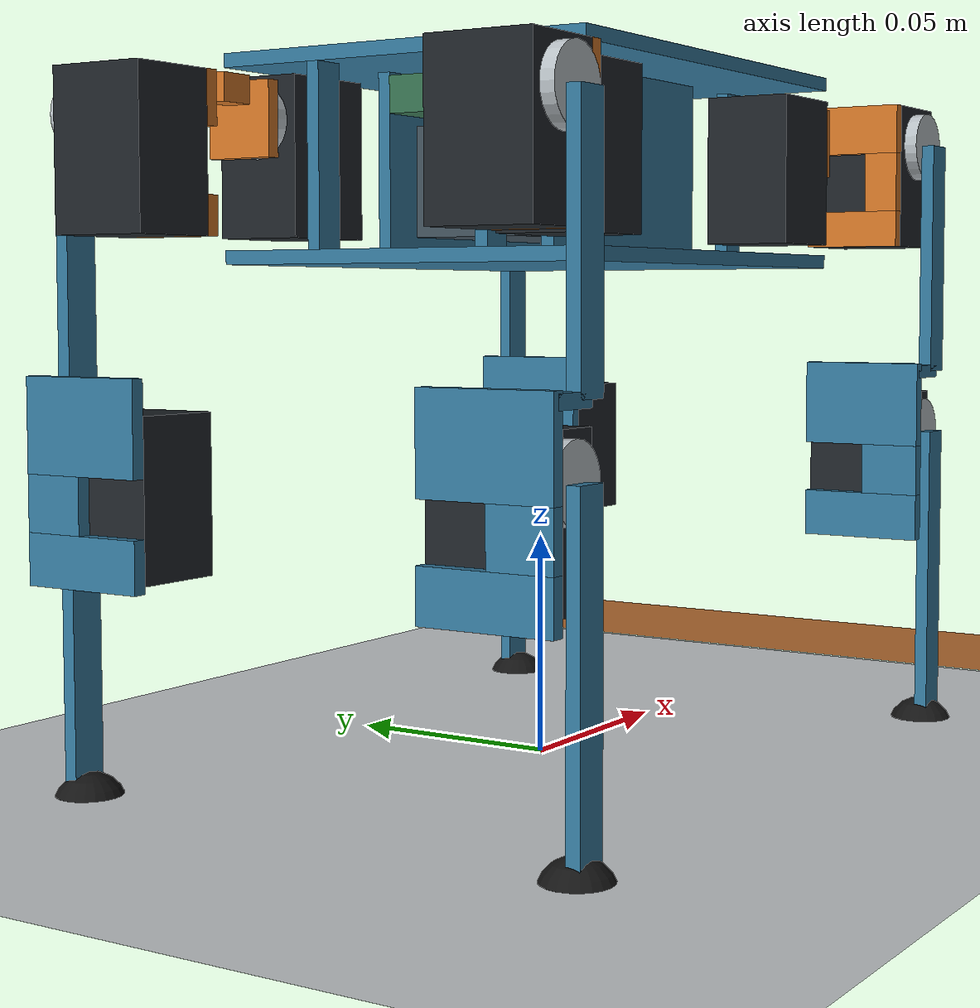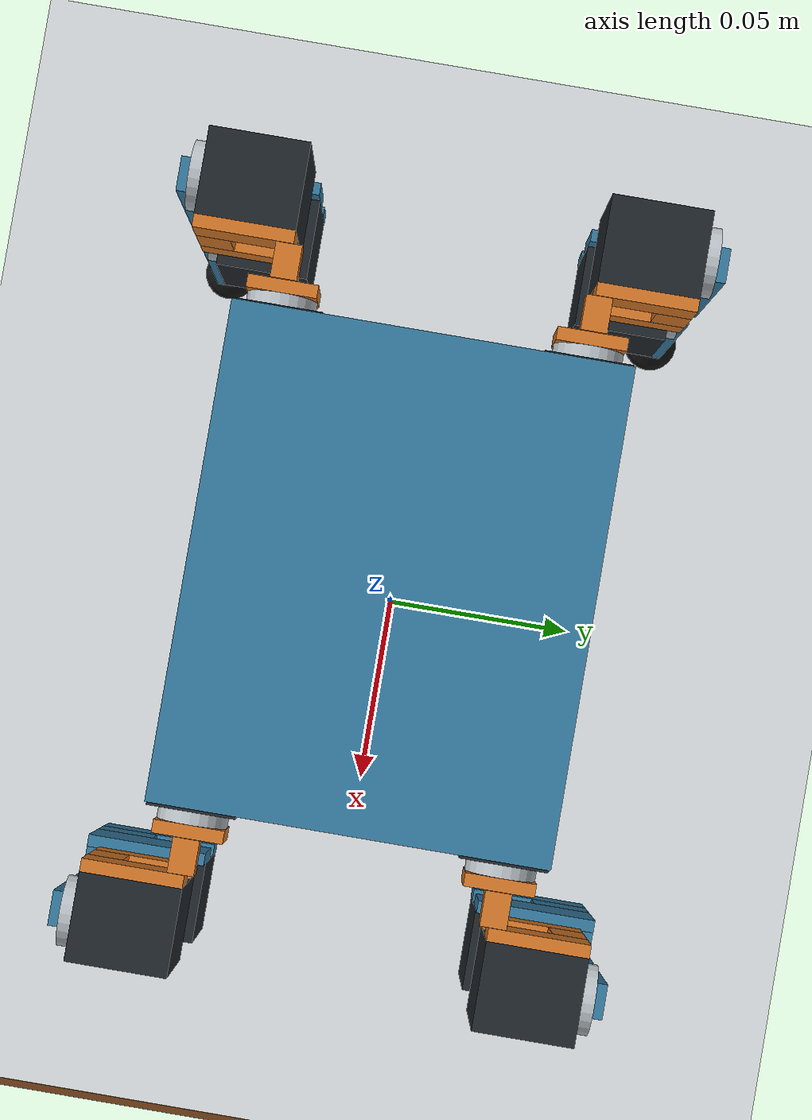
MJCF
<mujoco model="cheetah_pup_assembly_v1">
  <!-- Original shaft-anchored assembly envelopes. Ideal PD diagnostic XML; BAM adapter is separate. -->
  <compiler angle="radian" autolimits="true" inertiafromgeom="false" />
  <option timestep="0.002" integrator="implicitfast" gravity="0 0 -9.81" />
  <visual>
    <global azimuth="135" elevation="-25" />
    <headlight diffuse="0.8 0.8 0.8" ambient="0.3 0.3 0.3" />
  </visual>
  <default>
    <joint type="hinge" limited="true" damping="0.003" armature="8e-06" />
    <geom contype="1" conaffinity="3" condim="3" friction="0.8 0.005 0.0001" />
  </default>
  <worldbody>
    <geom name="ground" type="plane" size="2 2 0.1" contype="2" conaffinity="1" friction="0.8 0.005 0.0001" rgba="0.83 0.85 0.86 1" />
    <light pos="0 -0.4 1" dir="0 0 -1" directional="true" />
    <geom name="threshold" type="box" pos="0.55 0 0.005" size="0.04 0.4 0.005" contype="2" conaffinity="1" rgba="0.6 0.35 0.15 1" />
    <body name="base" pos="0 0 0.14155384413">
      <freejoint name="floating_base" />
      <geom name="chassis_top" type="box" pos="0.0 0.0 0.013499999999999998" rgba="0.20 0.47 0.61 1" group="0" size="0.056 0.045 0.0015" />
      <geom name="chassis_bottom" type="box" pos="0.0 0.0 -0.028499999999999998" rgba="0.20 0.47 0.61 1" group="0" size="0.056 0.045 0.0015" />
      <geom name="chassis_left_center_rail" type="box" pos="0.0 0.021 -0.0075" rgba="0.20 0.47 0.61 1" group="0" size="0.031 0.0015 0.0195" />
      <geom name="chassis_left_front_post" type="box" pos="0.0525 0.021 -0.0075" rgba="0.20 0.47 0.61 1" group="0" size="0.0035 0.0015 0.0195" />
      <geom name="chassis_left_rear_post" type="box" pos="-0.0525 0.021 -0.0075" rgba="0.20 0.47 0.61 1" group="0" size="0.0035 0.0015 0.0195" />
      <geom name="chassis_right_center_rail" type="box" pos="0.0 -0.021 -0.0075" rgba="0.20 0.47 0.61 1" group="0" size="0.031 0.0015 0.0195" />
      <geom name="chassis_right_front_post" type="box" pos="0.0525 -0.021 -0.0075" rgba="0.20 0.47 0.61 1" group="0" size="0.0035 0.0015 0.0195" />
      <geom name="chassis_right_rear_post" type="box" pos="-0.0525 -0.021 -0.0075" rgba="0.20 0.47 0.61 1" group="0" size="0.0035 0.0015 0.0195" />
      <geom name="battery_allowance" type="box" pos="0.0 0.0 -0.012" rgba="0.25 0.31 0.35 1" group="0" size="0.03 0.013 0.012" />
      <geom name="compute_allowance" type="box" pos="0.025 0.0 0.006" rgba="0.21 0.44 0.31 1" group="0" size="0.0225 0.013 0.004" />
      <geom name="electronics_allowance" type="box" pos="-0.025 0.0 0.006" rgba="0.21 0.44 0.31 1" group="0" size="0.015 0.013 0.004" />
      <geom name="FL_roll_motor_envelope" type="box" pos="0.0455 0.035 -0.0075" rgba="0.12 0.14 0.16 1" group="0" size="0.0115 0.01 0.017" />
      <geom name="FL_roll_port_keepout_a" type="box" pos="0.041499999999999995 0.020000000000000004 -0.009" rgba="0.65 0.35 0.73 0.25" group="5" size="0.0065 0.005 0.006" contype="0" conaffinity="0" />
      <geom name="FL_roll_port_keepout_b" type="box" pos="0.041499999999999995 0.05 -0.009" rgba="0.65 0.35 0.73 0.25" group="5" size="0.0065 0.005 0.006" contype="0" conaffinity="0" />
      <geom name="FR_roll_motor_envelope" type="box" pos="0.0455 -0.035 -0.0075" rgba="0.12 0.14 0.16 1" group="0" size="0.0115 0.01 0.017" />
      <geom name="FR_roll_port_keepout_a" type="box" pos="0.041499999999999995 -0.05 -0.009" rgba="0.65 0.35 0.73 0.25" group="5" size="0.0065 0.005 0.006" contype="0" conaffinity="0" />
      <geom name="FR_roll_port_keepout_b" type="box" pos="0.041499999999999995 -0.020000000000000004 -0.009" rgba="0.65 0.35 0.73 0.25" group="5" size="0.0065 0.005 0.006" contype="0" conaffinity="0" />
      <geom name="RL_roll_motor_envelope" type="box" pos="-0.0455 0.035 -0.0075" rgba="0.12 0.14 0.16 1" group="0" size="0.0115 0.01 0.017" />
      <geom name="RL_roll_port_keepout_a" type="box" pos="-0.041499999999999995 0.05 -0.009" rgba="0.65 0.35 0.73 0.25" group="5" size="0.0065 0.005 0.006" contype="0" conaffinity="0" />
      <geom name="RL_roll_port_keepout_b" type="box" pos="-0.041499999999999995 0.020000000000000004 -0.009" rgba="0.65 0.35 0.73 0.25" group="5" size="0.0065 0.005 0.006" contype="0" conaffinity="0" />
      <geom name="RR_roll_motor_envelope" type="box" pos="-0.0455 -0.035 -0.0075" rgba="0.12 0.14 0.16 1" group="0" size="0.0115 0.01 0.017" />
      <geom name="RR_roll_port_keepout_a" type="box" pos="-0.041499999999999995 -0.020000000000000004 -0.009" rgba="0.65 0.35 0.73 0.25" group="5" size="0.0065 0.005 0.006" contype="0" conaffinity="0" />
      <geom name="RR_roll_port_keepout_b" type="box" pos="-0.041499999999999995 -0.05 -0.009" rgba="0.65 0.35 0.73 0.25" group="5" size="0.0065 0.005 0.006" contype="0" conaffinity="0" />
      <inertial mass="0.353" pos="0.000354107648725 0 -0.00626149244873" fullinertia="0.000229030997878 0.00041502124359 0.000520686349457 9.37893941723e-07 -1.53268655609e-06 0" />
      <site name="imu" pos="0 0 0" size="0.003" rgba="1 0.4 0 1" />
      <camera name="follow" mode="trackcom" pos="0.38 -0.43 0.24" xyaxes="0.75 0.66 0 -0.26 0.30 0.92" />
      <body name="FL_roll_link" pos="0.06 0.035 0">
        <joint name="FL_hip_roll" axis="1 0 0" range="-0.7 0.7" />
        <geom name="FL_roll_horn_spacer" type="box" pos="0.0015 0.0 0.0" rgba="0.82 0.46 0.15 1" group="0" size="0.0015 0.008 0.008" />
        <geom name="FL_roll_bridge" type="box" pos="0.007 0.0 0.006" rgba="0.82 0.46 0.15 1" group="0" size="0.004 0.003 0.003" />
        <geom name="FL_roll_cheek_top" type="box" pos="0.0125 0.0105 0.00375" rgba="0.82 0.46 0.15 1" group="0" size="0.0015 0.0115 0.00575" />
        <geom name="FL_roll_cheek_bottom" type="box" pos="0.0125 0.0105 -0.02025" rgba="0.82 0.46 0.15 1" group="0" size="0.0015 0.0115 0.00425" />
        <geom name="FL_roll_cheek_front" type="box" pos="0.0125 0.018000000000000002 -0.009" rgba="0.82 0.46 0.15 1" group="0" size="0.0015 0.004 0.007" />
        <geom name="FL_hip_motor_envelope" type="box" pos="0.024 0.0105 -0.0075" rgba="0.12 0.14 0.16 1" group="0" size="0.01 0.0115 0.017" />
        <geom name="FL_roll_output_horn" type="cylinder" rgba="0.72 0.75 0.77 1" group="0" fromto="-0.003 0.0 0.0 0.0 0.0 0.0" size="0.008" />
        <geom name="FL_hip_port_keepout_a" type="box" pos="0.039 0.006500000000000002 -0.009" rgba="0.65 0.35 0.73 0.25" group="5" size="0.005 0.0065 0.006" contype="0" conaffinity="0" />
        <geom name="FL_hip_port_keepout_b" type="box" pos="0.009000000000000001 0.006500000000000002 -0.009" rgba="0.65 0.35 0.73 0.25" group="5" size="0.005 0.0065 0.006" contype="0" conaffinity="0" />
        <inertial mass="0.022" pos="0.0214891751484 0.0110656772562 -0.00822913610519" fullinertia="3.40822247721e-06 3.6626300734e-06 2.48517706661e-06 -3.21571276726e-07 3.67711512067e-07 -4.40612932327e-08" />
        <body name="FL_upper_link" pos="0.024 0.025 0">
          <joint name="FL_hip_pitch" axis="0 1 0" range="-1.2 1.2" />
          <geom name="FL_upper_bar" type="box" pos="0.0 0.0015 -0.027500000000000004" rgba="0.20 0.47 0.61 1" group="0" size="0.004 0.0015 0.027500000000000004" />
          <geom name="FL_upper_bridge" type="box" pos="-0.00575 0.0015 -0.05500000000000001" rgba="0.20 0.47 0.61 1" group="0" size="0.00575 0.0015 0.0015" />
          <geom name="FL_knee_cheek_top" type="box" pos="-0.0115 -0.0115 -0.063" rgba="0.20 0.47 0.61 1" group="0" size="0.0015 0.0145 0.01" />
          <geom name="FL_knee_cheek_bottom" type="box" pos="-0.0115 -0.0115 -0.09050000000000001" rgba="0.20 0.47 0.61 1" group="0" size="0.0015 0.0145 0.0055" />
          <geom name="FL_knee_cheek_front" type="box" pos="-0.0115 -0.004 -0.079" rgba="0.20 0.47 0.61 1" group="0" size="0.0015 0.007 0.006" />
          <geom name="FL_knee_motor_envelope" type="box" pos="0.0 -0.0145 -0.07750000000000001" rgba="0.12 0.14 0.16 1" group="0" size="0.01 0.0115 0.017" />
          <geom name="FL_hip_output_horn" type="cylinder" rgba="0.72 0.75 0.77 1" group="0" fromto="0.0 -0.003 0.0 0.0 0.0 0.0" size="0.008" />
          <geom name="FL_knee_port_keepout_a" type="box" pos="0.015 -0.0185 -0.079" rgba="0.65 0.35 0.73 0.25" group="5" size="0.005 0.0065 0.006" contype="0" conaffinity="0" />
          <geom name="FL_knee_port_keepout_b" type="box" pos="-0.015 -0.0185 -0.079" rgba="0.65 0.35 0.73 0.25" group="5" size="0.005 0.0065 0.006" contype="0" conaffinity="0" />
          <inertial mass="0.03" pos="-0.00306091589523 -0.0105454458159 -0.0715932667598" fullinertia="1.39216344542e-05 1.32602270516e-05 3.35884136866e-06 6.4792130985e-08 -1.19212742916e-07 -2.40170136229e-06" />
          <body name="FL_lower_link" pos="0 0 -0.07">
            <joint name="FL_knee" axis="0 1 0" range="-2.1 -0.1" />
            <geom name="FL_lower_bar" type="box" pos="0.0 0.0015 -0.0375" rgba="0.20 0.47 0.61 1" group="0" size="0.004 0.0015 0.0375" />
            <geom name="FL_knee_output_horn" type="cylinder" rgba="0.72 0.75 0.77 1" group="0" fromto="0.0 -0.003 0.0 0.0 0.0 0.0" size="0.008" />
            <inertial mass="0.013" pos="0 0.00115384615385 -0.0461538461538" fullinertia="8.02218461538e-06 8.06282564103e-06 1.42825641026e-07 0 0 -1.29807692308e-07" />
            <geom name="FL_foot_collision" type="sphere" pos="0 0 -0.075" size="0.008" rgba="0.08 0.08 0.08 1" />
            <site name="FL_foot" pos="0 0 -0.075" size="0.002" rgba="1 0.2 0.1 1" />
          </body>
        </body>
      </body>
      <body name="FR_roll_link" pos="0.06 -0.035 0">
        <joint name="FR_hip_roll" axis="1 0 0" range="-0.7 0.7" />
        <geom name="FR_roll_horn_spacer" type="box" pos="0.0015 0.0 0.0" rgba="0.82 0.46 0.15 1" group="0" size="0.0015 0.008 0.008" />
        <geom name="FR_roll_bridge" type="box" pos="0.007 0.0 0.006" rgba="0.82 0.46 0.15 1" group="0" size="0.004 0.003 0.003" />
        <geom name="FR_roll_cheek_top" type="box" pos="0.0125 -0.0105 0.00375" rgba="0.82 0.46 0.15 1" group="0" size="0.0015 0.0115 0.00575" />
        <geom name="FR_roll_cheek_bottom" type="box" pos="0.0125 -0.0105 -0.02025" rgba="0.82 0.46 0.15 1" group="0" size="0.0015 0.0115 0.00425" />
        <geom name="FR_roll_cheek_front" type="box" pos="0.0125 -0.018000000000000002 -0.009" rgba="0.82 0.46 0.15 1" group="0" size="0.0015 0.004 0.007" />
        <geom name="FR_hip_motor_envelope" type="box" pos="0.024 -0.0105 -0.0075" rgba="0.12 0.14 0.16 1" group="0" size="0.01 0.0115 0.017" />
        <geom name="FR_roll_output_horn" type="cylinder" rgba="0.72 0.75 0.77 1" group="0" fromto="-0.003 0.0 0.0 0.0 0.0 0.0" size="0.008" />
        <geom name="FR_hip_port_keepout_a" type="box" pos="0.009000000000000001 -0.006500000000000002 -0.009" rgba="0.65 0.35 0.73 0.25" group="5" size="0.005 0.0065 0.006" contype="0" conaffinity="0" />
        <geom name="FR_hip_port_keepout_b" type="box" pos="0.039 -0.006500000000000002 -0.009" rgba="0.65 0.35 0.73 0.25" group="5" size="0.005 0.0065 0.006" contype="0" conaffinity="0" />
        <inertial mass="0.022" pos="0.0210129893538 -0.0110656772562 -0.00822913610519" fullinertia="3.40822247721e-06 3.60503426777e-06 2.42758126098e-06 3.35212370626e-07 3.16622093037e-07 4.40612932327e-08" />
        <body name="FR_upper_link" pos="0.024 -0.025 0">
          <joint name="FR_hip_pitch" axis="0 1 0" range="-1.2 1.2" />
          <geom name="FR_upper_bar" type="box" pos="0.0 -0.0015 -0.027500000000000004" rgba="0.20 0.47 0.61 1" group="0" size="0.004 0.0015 0.027500000000000004" />
          <geom name="FR_upper_bridge" type="box" pos="-0.00575 -0.0015 -0.05500000000000001" rgba="0.20 0.47 0.61 1" group="0" size="0.00575 0.0015 0.0015" />
          <geom name="FR_knee_cheek_top" type="box" pos="-0.0115 0.0115 -0.063" rgba="0.20 0.47 0.61 1" group="0" size="0.0015 0.0145 0.01" />
          <geom name="FR_knee_cheek_bottom" type="box" pos="-0.0115 0.0115 -0.09050000000000001" rgba="0.20 0.47 0.61 1" group="0" size="0.0015 0.0145 0.0055" />
          <geom name="FR_knee_cheek_front" type="box" pos="-0.0115 0.004 -0.079" rgba="0.20 0.47 0.61 1" group="0" size="0.0015 0.007 0.006" />
          <geom name="FR_knee_motor_envelope" type="box" pos="0.0 0.0145 -0.07750000000000001" rgba="0.12 0.14 0.16 1" group="0" size="0.01 0.0115 0.017" />
          <geom name="FR_hip_output_horn" type="cylinder" rgba="0.72 0.75 0.77 1" group="0" fromto="0.0 0.003 0.0 0.0 0.0 0.0" size="0.008" />
          <geom name="FR_knee_port_keepout_a" type="box" pos="-0.015 0.0185 -0.079" rgba="0.65 0.35 0.73 0.25" group="5" size="0.005 0.0065 0.006" contype="0" conaffinity="0" />
          <geom name="FR_knee_port_keepout_b" type="box" pos="0.015 0.0185 -0.079" rgba="0.65 0.35 0.73 0.25" group="5" size="0.005 0.0065 0.006" contype="0" conaffinity="0" />
          <inertial mass="0.03" pos="-0.00341011881123 0.0105454458159 -0.0715932667598" fullinertia="1.39216344542e-05 1.31924359259e-05 3.29105024299e-06 -1.56488659294e-08 -2.39820109714e-07 2.40170136229e-06" />
          <body name="FR_lower_link" pos="0 0 -0.07">
            <joint name="FR_knee" axis="0 1 0" range="-2.1 -0.1" />
            <geom name="FR_lower_bar" type="box" pos="0.0 -0.0015 -0.0375" rgba="0.20 0.47 0.61 1" group="0" size="0.004 0.0015 0.0375" />
            <geom name="FR_knee_output_horn" type="cylinder" rgba="0.72 0.75 0.77 1" group="0" fromto="0.0 0.003 0.0 0.0 0.0 0.0" size="0.008" />
            <inertial mass="0.013" pos="0 -0.00115384615385 -0.0461538461538" fullinertia="8.02218461538e-06 8.06282564103e-06 1.42825641026e-07 0 0 1.29807692308e-07" />
            <geom name="FR_foot_collision" type="sphere" pos="0 0 -0.075" size="0.008" rgba="0.08 0.08 0.08 1" />
            <site name="FR_foot" pos="0 0 -0.075" size="0.002" rgba="1 0.2 0.1 1" />
          </body>
        </body>
      </body>
      <body name="RL_roll_link" pos="-0.06 0.035 0">
        <joint name="RL_hip_roll" axis="1 0 0" range="-0.7 0.7" />
        <geom name="RL_roll_horn_spacer" type="box" pos="-0.0015 0.0 0.0" rgba="0.82 0.46 0.15 1" group="0" size="0.0015 0.008 0.008" />
        <geom name="RL_roll_bridge" type="box" pos="-0.007 0.0 0.006" rgba="0.82 0.46 0.15 1" group="0" size="0.004 0.003 0.003" />
        <geom name="RL_roll_cheek_top" type="box" pos="-0.0125 0.0105 0.00375" rgba="0.82 0.46 0.15 1" group="0" size="0.0015 0.0115 0.00575" />
        <geom name="RL_roll_cheek_bottom" type="box" pos="-0.0125 0.0105 -0.02025" rgba="0.82 0.46 0.15 1" group="0" size="0.0015 0.0115 0.00425" />
        <geom name="RL_roll_cheek_front" type="box" pos="-0.0125 0.018000000000000002 -0.009" rgba="0.82 0.46 0.15 1" group="0" size="0.0015 0.004 0.007" />
        <geom name="RL_hip_motor_envelope" type="box" pos="-0.024 0.0105 -0.0075" rgba="0.12 0.14 0.16 1" group="0" size="0.01 0.0115 0.017" />
        <geom name="RL_roll_output_horn" type="cylinder" rgba="0.72 0.75 0.77 1" group="0" fromto="0.003 0.0 0.0 0.0 0.0 0.0" size="0.008" />
        <geom name="RL_hip_port_keepout_a" type="box" pos="-0.009000000000000001 0.006500000000000002 -0.009" rgba="0.65 0.35 0.73 0.25" group="5" size="0.005 0.0065 0.006" contype="0" conaffinity="0" />
        <geom name="RL_hip_port_keepout_b" type="box" pos="-0.039 0.006500000000000002 -0.009" rgba="0.65 0.35 0.73 0.25" group="5" size="0.005 0.0065 0.006" contype="0" conaffinity="0" />
        <inertial mass="0.022" pos="-0.0210129893538 0.0110656772562 -0.00822913610519" fullinertia="3.40822247721e-06 3.60503426777e-06 2.42758126098e-06 3.35212370626e-07 -3.16622093037e-07 -4.40612932327e-08" />
        <body name="RL_upper_link" pos="-0.024 0.025 0">
          <joint name="RL_hip_pitch" axis="0 1 0" range="-1.2 1.2" />
          <geom name="RL_upper_bar" type="box" pos="0.0 0.0015 -0.027500000000000004" rgba="0.20 0.47 0.61 1" group="0" size="0.004 0.0015 0.027500000000000004" />
          <geom name="RL_upper_bridge" type="box" pos="-0.00575 0.0015 -0.05500000000000001" rgba="0.20 0.47 0.61 1" group="0" size="0.00575 0.0015 0.0015" />
          <geom name="RL_knee_cheek_top" type="box" pos="-0.0115 -0.0115 -0.063" rgba="0.20 0.47 0.61 1" group="0" size="0.0015 0.0145 0.01" />
          <geom name="RL_knee_cheek_bottom" type="box" pos="-0.0115 -0.0115 -0.09050000000000001" rgba="0.20 0.47 0.61 1" group="0" size="0.0015 0.0145 0.0055" />
          <geom name="RL_knee_cheek_front" type="box" pos="-0.0115 -0.004 -0.079" rgba="0.20 0.47 0.61 1" group="0" size="0.0015 0.007 0.006" />
          <geom name="RL_knee_motor_envelope" type="box" pos="0.0 -0.0145 -0.07750000000000001" rgba="0.12 0.14 0.16 1" group="0" size="0.01 0.0115 0.017" />
          <geom name="RL_hip_output_horn" type="cylinder" rgba="0.72 0.75 0.77 1" group="0" fromto="0.0 -0.003 0.0 0.0 0.0 0.0" size="0.008" />
          <geom name="RL_knee_port_keepout_a" type="box" pos="0.015 -0.0185 -0.079" rgba="0.65 0.35 0.73 0.25" group="5" size="0.005 0.0065 0.006" contype="0" conaffinity="0" />
          <geom name="RL_knee_port_keepout_b" type="box" pos="-0.015 -0.0185 -0.079" rgba="0.65 0.35 0.73 0.25" group="5" size="0.005 0.0065 0.006" contype="0" conaffinity="0" />
          <inertial mass="0.03" pos="-0.00306091589523 -0.0105454458159 -0.0715932667598" fullinertia="1.39216344542e-05 1.32602270516e-05 3.35884136866e-06 6.4792130985e-08 -1.19212742916e-07 -2.40170136229e-06" />
          <body name="RL_lower_link" pos="0 0 -0.07">
            <joint name="RL_knee" axis="0 1 0" range="-2.1 -0.1" />
            <geom name="RL_lower_bar" type="box" pos="0.0 0.0015 -0.0375" rgba="0.20 0.47 0.61 1" group="0" size="0.004 0.0015 0.0375" />
            <geom name="RL_knee_output_horn" type="cylinder" rgba="0.72 0.75 0.77 1" group="0" fromto="0.0 -0.003 0.0 0.0 0.0 0.0" size="0.008" />
            <inertial mass="0.013" pos="0 0.00115384615385 -0.0461538461538" fullinertia="8.02218461538e-06 8.06282564103e-06 1.42825641026e-07 0 0 -1.29807692308e-07" />
            <geom name="RL_foot_collision" type="sphere" pos="0 0 -0.075" size="0.008" rgba="0.08 0.08 0.08 1" />
            <site name="RL_foot" pos="0 0 -0.075" size="0.002" rgba="1 0.2 0.1 1" />
          </body>
        </body>
      </body>
      <body name="RR_roll_link" pos="-0.06 -0.035 0">
        <joint name="RR_hip_roll" axis="1 0 0" range="-0.7 0.7" />
        <geom name="RR_roll_horn_spacer" type="box" pos="-0.0015 0.0 0.0" rgba="0.82 0.46 0.15 1" group="0" size="0.0015 0.008 0.008" />
        <geom name="RR_roll_bridge" type="box" pos="-0.007 0.0 0.006" rgba="0.82 0.46 0.15 1" group="0" size="0.004 0.003 0.003" />
        <geom name="RR_roll_cheek_top" type="box" pos="-0.0125 -0.0105 0.00375" rgba="0.82 0.46 0.15 1" group="0" size="0.0015 0.0115 0.00575" />
        <geom name="RR_roll_cheek_bottom" type="box" pos="-0.0125 -0.0105 -0.02025" rgba="0.82 0.46 0.15 1" group="0" size="0.0015 0.0115 0.00425" />
        <geom name="RR_roll_cheek_front" type="box" pos="-0.0125 -0.018000000000000002 -0.009" rgba="0.82 0.46 0.15 1" group="0" size="0.0015 0.004 0.007" />
        <geom name="RR_hip_motor_envelope" type="box" pos="-0.024 -0.0105 -0.0075" rgba="0.12 0.14 0.16 1" group="0" size="0.01 0.0115 0.017" />
        <geom name="RR_roll_output_horn" type="cylinder" rgba="0.72 0.75 0.77 1" group="0" fromto="0.003 0.0 0.0 0.0 0.0 0.0" size="0.008" />
        <geom name="RR_hip_port_keepout_a" type="box" pos="-0.039 -0.006500000000000002 -0.009" rgba="0.65 0.35 0.73 0.25" group="5" size="0.005 0.0065 0.006" contype="0" conaffinity="0" />
        <geom name="RR_hip_port_keepout_b" type="box" pos="-0.009000000000000001 -0.006500000000000002 -0.009" rgba="0.65 0.35 0.73 0.25" group="5" size="0.005 0.0065 0.006" contype="0" conaffinity="0" />
        <inertial mass="0.022" pos="-0.0214891751484 -0.0110656772562 -0.00822913610519" fullinertia="3.40822247721e-06 3.6626300734e-06 2.48517706661e-06 -3.21571276726e-07 -3.67711512067e-07 4.40612932327e-08" />
        <body name="RR_upper_link" pos="-0.024 -0.025 0">
          <joint name="RR_hip_pitch" axis="0 1 0" range="-1.2 1.2" />
          <geom name="RR_upper_bar" type="box" pos="0.0 -0.0015 -0.027500000000000004" rgba="0.20 0.47 0.61 1" group="0" size="0.004 0.0015 0.027500000000000004" />
          <geom name="RR_upper_bridge" type="box" pos="-0.00575 -0.0015 -0.05500000000000001" rgba="0.20 0.47 0.61 1" group="0" size="0.00575 0.0015 0.0015" />
          <geom name="RR_knee_cheek_top" type="box" pos="-0.0115 0.0115 -0.063" rgba="0.20 0.47 0.61 1" group="0" size="0.0015 0.0145 0.01" />
          <geom name="RR_knee_cheek_bottom" type="box" pos="-0.0115 0.0115 -0.09050000000000001" rgba="0.20 0.47 0.61 1" group="0" size="0.0015 0.0145 0.0055" />
          <geom name="RR_knee_cheek_front" type="box" pos="-0.0115 0.004 -0.079" rgba="0.20 0.47 0.61 1" group="0" size="0.0015 0.007 0.006" />
          <geom name="RR_knee_motor_envelope" type="box" pos="0.0 0.0145 -0.07750000000000001" rgba="0.12 0.14 0.16 1" group="0" size="0.01 0.0115 0.017" />
          <geom name="RR_hip_output_horn" type="cylinder" rgba="0.72 0.75 0.77 1" group="0" fromto="0.0 0.003 0.0 0.0 0.0 0.0" size="0.008" />
          <geom name="RR_knee_port_keepout_a" type="box" pos="-0.015 0.0185 -0.079" rgba="0.65 0.35 0.73 0.25" group="5" size="0.005 0.0065 0.006" contype="0" conaffinity="0" />
          <geom name="RR_knee_port_keepout_b" type="box" pos="0.015 0.0185 -0.079" rgba="0.65 0.35 0.73 0.25" group="5" size="0.005 0.0065 0.006" contype="0" conaffinity="0" />
          <inertial mass="0.03" pos="-0.00341011881123 0.0105454458159 -0.0715932667598" fullinertia="1.39216344542e-05 1.31924359259e-05 3.29105024299e-06 -1.56488659294e-08 -2.39820109714e-07 2.40170136229e-06" />
          <body name="RR_lower_link" pos="0 0 -0.07">
            <joint name="RR_knee" axis="0 1 0" range="-2.1 -0.1" />
            <geom name="RR_lower_bar" type="box" pos="0.0 -0.0015 -0.0375" rgba="0.20 0.47 0.61 1" group="0" size="0.004 0.0015 0.0375" />
            <geom name="RR_knee_output_horn" type="cylinder" rgba="0.72 0.75 0.77 1" group="0" fromto="0.0 0.003 0.0 0.0 0.0 0.0" size="0.008" />
            <inertial mass="0.013" pos="0 -0.00115384615385 -0.0461538461538" fullinertia="8.02218461538e-06 8.06282564103e-06 1.42825641026e-07 0 0 1.29807692308e-07" />
            <geom name="RR_foot_collision" type="sphere" pos="0 0 -0.075" size="0.008" rgba="0.08 0.08 0.08 1" />
            <site name="RR_foot" pos="0 0 -0.075" size="0.002" rgba="1 0.2 0.1 1" />
          </body>
        </body>
      </body>
    </body>
  </worldbody>
  <actuator>
    <position name="FL_hip_roll_pd" joint="FL_hip_roll" kp="1.5" kv="0.04" ctrllimited="true" forcelimited="true" ctrlrange="-0.7 0.7" forcerange="-0.1 0.1" />
    <position name="FL_hip_pitch_pd" joint="FL_hip_pitch" kp="1.5" kv="0.04" ctrllimited="true" forcelimited="true" ctrlrange="-1.2 1.2" forcerange="-0.1 0.1" />
    <position name="FL_knee_pd" joint="FL_knee" kp="1.5" kv="0.04" ctrllimited="true" forcelimited="true" ctrlrange="-2.1 -0.1" forcerange="-0.1 0.1" />
    <position name="FR_hip_roll_pd" joint="FR_hip_roll" kp="1.5" kv="0.04" ctrllimited="true" forcelimited="true" ctrlrange="-0.7 0.7" forcerange="-0.1 0.1" />
    <position name="FR_hip_pitch_pd" joint="FR_hip_pitch" kp="1.5" kv="0.04" ctrllimited="true" forcelimited="true" ctrlrange="-1.2 1.2" forcerange="-0.1 0.1" />
    <position name="FR_knee_pd" joint="FR_knee" kp="1.5" kv="0.04" ctrllimited="true" forcelimited="true" ctrlrange="-2.1 -0.1" forcerange="-0.1 0.1" />
    <position name="RL_hip_roll_pd" joint="RL_hip_roll" kp="1.5" kv="0.04" ctrllimited="true" forcelimited="true" ctrlrange="-0.7 0.7" forcerange="-0.1 0.1" />
    <position name="RL_hip_pitch_pd" joint="RL_hip_pitch" kp="1.5" kv="0.04" ctrllimited="true" forcelimited="true" ctrlrange="-1.2 1.2" forcerange="-0.1 0.1" />
    <position name="RL_knee_pd" joint="RL_knee" kp="1.5" kv="0.04" ctrllimited="true" forcelimited="true" ctrlrange="-2.1 -0.1" forcerange="-0.1 0.1" />
    <position name="RR_hip_roll_pd" joint="RR_hip_roll" kp="1.5" kv="0.04" ctrllimited="true" forcelimited="true" ctrlrange="-0.7 0.7" forcerange="-0.1 0.1" />
    <position name="RR_hip_pitch_pd" joint="RR_hip_pitch" kp="1.5" kv="0.04" ctrllimited="true" forcelimited="true" ctrlrange="-1.2 1.2" forcerange="-0.1 0.1" />
    <position name="RR_knee_pd" joint="RR_knee" kp="1.5" kv="0.04" ctrllimited="true" forcelimited="true" ctrlrange="-2.1 -0.1" forcerange="-0.1 0.1" />
  </actuator>
  <contact>
    <pair geom1="FL_roll_motor_envelope" geom2="FL_roll_horn_spacer" condim="3" />
    <pair geom1="FL_roll_motor_envelope" geom2="FL_roll_bridge" condim="3" />
    <pair geom1="FL_roll_motor_envelope" geom2="FL_roll_cheek_top" condim="3" />
    <pair geom1="FL_roll_motor_envelope" geom2="FL_roll_cheek_bottom" condim="3" />
    <pair geom1="FL_roll_motor_envelope" geom2="FL_roll_cheek_front" condim="3" />
    <pair geom1="FL_roll_motor_envelope" geom2="FL_hip_motor_envelope" condim="3" />
    <pair geom1="FL_hip_motor_envelope" geom2="FL_upper_bar" condim="3" />
    <pair geom1="FL_hip_motor_envelope" geom2="FL_upper_bridge" condim="3" />
    <pair geom1="FL_hip_motor_envelope" geom2="FL_knee_cheek_top" condim="3" />
    <pair geom1="FL_hip_motor_envelope" geom2="FL_knee_cheek_bottom" condim="3" />
    <pair geom1="FL_hip_motor_envelope" geom2="FL_knee_cheek_front" condim="3" />
    <pair geom1="FL_hip_motor_envelope" geom2="FL_knee_motor_envelope" condim="3" />
    <pair geom1="FL_knee_motor_envelope" geom2="FL_lower_bar" condim="3" />
    <pair geom1="FL_knee_motor_envelope" geom2="FL_foot_collision" condim="3" />
    <pair geom1="FR_roll_motor_envelope" geom2="FR_roll_horn_spacer" condim="3" />
    <pair geom1="FR_roll_motor_envelope" geom2="FR_roll_bridge" condim="3" />
    <pair geom1="FR_roll_motor_envelope" geom2="FR_roll_cheek_top" condim="3" />
    <pair geom1="FR_roll_motor_envelope" geom2="FR_roll_cheek_bottom" condim="3" />
    <pair geom1="FR_roll_motor_envelope" geom2="FR_roll_cheek_front" condim="3" />
    <pair geom1="FR_roll_motor_envelope" geom2="FR_hip_motor_envelope" condim="3" />
    <pair geom1="FR_hip_motor_envelope" geom2="FR_upper_bar" condim="3" />
    <pair geom1="FR_hip_motor_envelope" geom2="FR_upper_bridge" condim="3" />
    <pair geom1="FR_hip_motor_envelope" geom2="FR_knee_cheek_top" condim="3" />
    <pair geom1="FR_hip_motor_envelope" geom2="FR_knee_cheek_bottom" condim="3" />
    <pair geom1="FR_hip_motor_envelope" geom2="FR_knee_cheek_front" condim="3" />
    <pair geom1="FR_hip_motor_envelope" geom2="FR_knee_motor_envelope" condim="3" />
    <pair geom1="FR_knee_motor_envelope" geom2="FR_lower_bar" condim="3" />
    <pair geom1="FR_knee_motor_envelope" geom2="FR_foot_collision" condim="3" />
    <pair geom1="RL_roll_motor_envelope" geom2="RL_roll_horn_spacer" condim="3" />
    <pair geom1="RL_roll_motor_envelope" geom2="RL_roll_bridge" condim="3" />
    <pair geom1="RL_roll_motor_envelope" geom2="RL_roll_cheek_top" condim="3" />
    <pair geom1="RL_roll_motor_envelope" geom2="RL_roll_cheek_bottom" condim="3" />
    <pair geom1="RL_roll_motor_envelope" geom2="RL_roll_cheek_front" condim="3" />
    <pair geom1="RL_roll_motor_envelope" geom2="RL_hip_motor_envelope" condim="3" />
    <pair geom1="RL_hip_motor_envelope" geom2="RL_upper_bar" condim="3" />
    <pair geom1="RL_hip_motor_envelope" geom2="RL_upper_bridge" condim="3" />
    <pair geom1="RL_hip_motor_envelope" geom2="RL_knee_cheek_top" condim="3" />
    <pair geom1="RL_hip_motor_envelope" geom2="RL_knee_cheek_bottom" condim="3" />
    <pair geom1="RL_hip_motor_envelope" geom2="RL_knee_cheek_front" condim="3" />
    <pair geom1="RL_hip_motor_envelope" geom2="RL_knee_motor_envelope" condim="3" />
    <pair geom1="RL_knee_motor_envelope" geom2="RL_lower_bar" condim="3" />
    <pair geom1="RL_knee_motor_envelope" geom2="RL_foot_collision" condim="3" />
    <pair geom1="RR_roll_motor_envelope" geom2="RR_roll_horn_spacer" condim="3" />
    <pair geom1="RR_roll_motor_envelope" geom2="RR_roll_bridge" condim="3" />
    <pair geom1="RR_roll_motor_envelope" geom2="RR_roll_cheek_top" condim="3" />
    <pair geom1="RR_roll_motor_envelope" geom2="RR_roll_cheek_bottom" condim="3" />
    <pair geom1="RR_roll_motor_envelope" geom2="RR_roll_cheek_front" condim="3" />
    <pair geom1="RR_roll_motor_envelope" geom2="RR_hip_motor_envelope" condim="3" />
    <pair geom1="RR_hip_motor_envelope" geom2="RR_upper_bar" condim="3" />
    <pair geom1="RR_hip_motor_envelope" geom2="RR_upper_bridge" condim="3" />
    <pair geom1="RR_hip_motor_envelope" geom2="RR_knee_cheek_top" condim="3" />
    <pair geom1="RR_hip_motor_envelope" geom2="RR_knee_cheek_bottom" condim="3" />
    <pair geom1="RR_hip_motor_envelope" geom2="RR_knee_cheek_front" condim="3" />
    <pair geom1="RR_hip_motor_envelope" geom2="RR_knee_motor_envelope" condim="3" />
    <pair geom1="RR_knee_motor_envelope" geom2="RR_lower_bar" condim="3" />
    <pair geom1="RR_knee_motor_envelope" geom2="RR_foot_collision" condim="3" />
  </contact>
  <sensor>
    <accelerometer name="imu_accel" site="imu" />
    <gyro name="imu_gyro" site="imu" />
    <framequat name="imu_orientation" objtype="site" objname="imu" />
  </sensor>
  <keyframe>
    <key name="stand" qpos="0 0 0.14155384413 1 0 0 0 0 0.4 -0.8 0 0.4 -0.8 0 0.4 -0.8 0 0.4 -0.8" ctrl="0 0.4 -0.8 0 0.4 -0.8 0 0.4 -0.8 0 0.4 -0.8" />
  </keyframe>
</mujoco>
